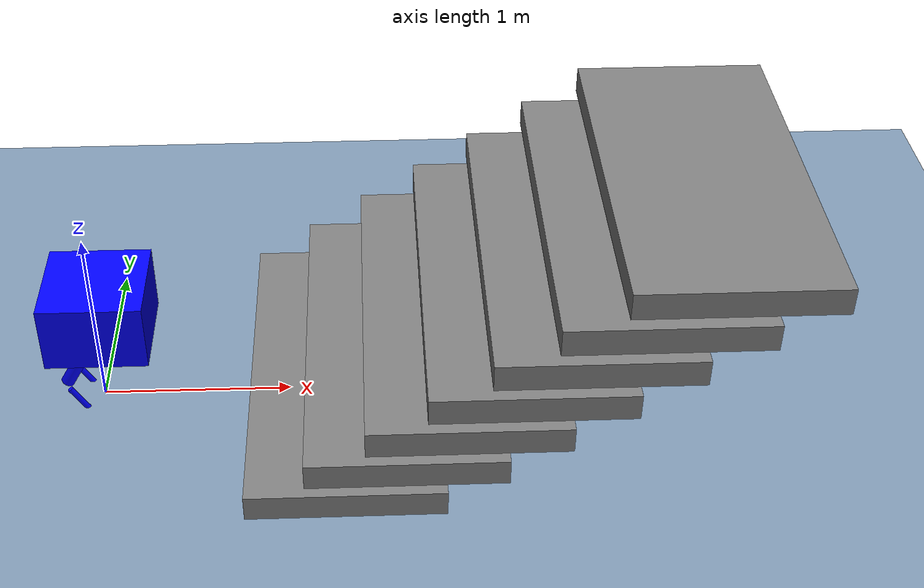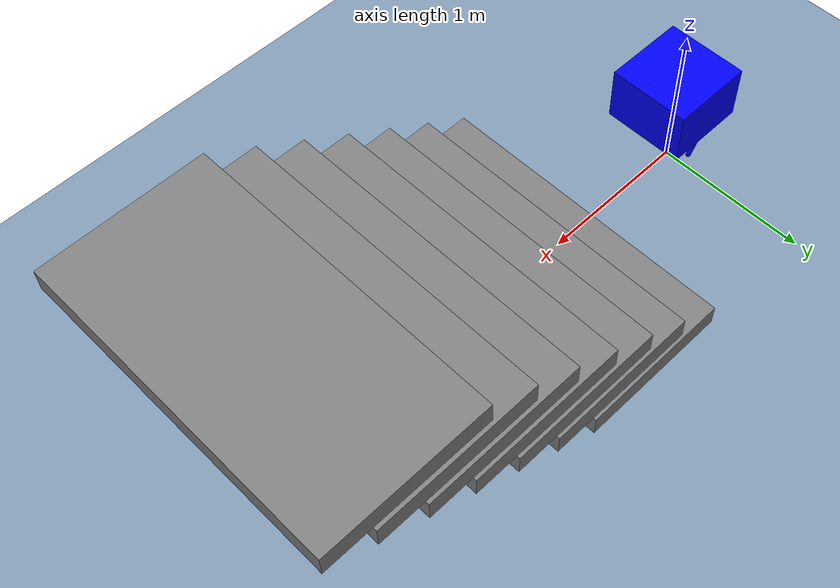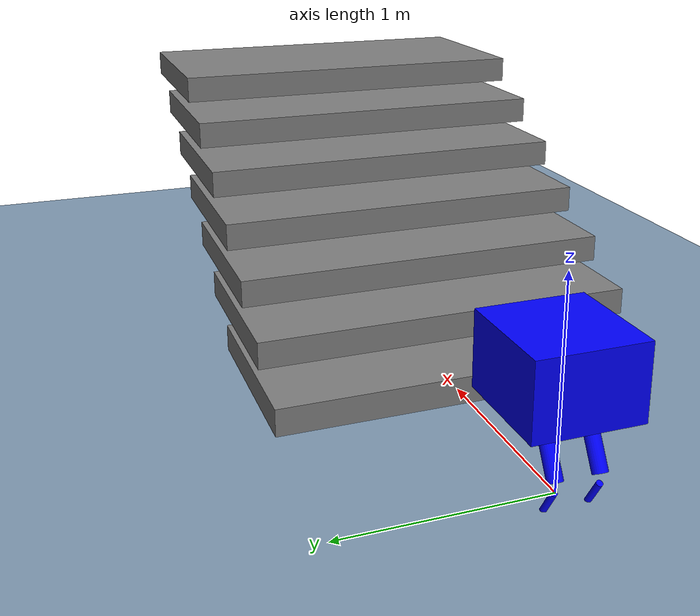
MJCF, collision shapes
<mujoco model="point_foot">
    <compiler angle="radian" meshdir="../meshes/" />
    <size njmax="500" nconmax="100" />

    <default>
        <light castshadow="false" diffuse="1 1 1" />
        <camera fovy="60"/>
        <default class="visual">
            <geom contype="0" conaffinity="0" group="1" type="mesh" rgba="0.9 0.9 0.9 1.0"/>
        </default>
        <joint armature="0.01" damping="0.01"/>
        <geom contype="1" conaffinity="1" condim="3" friction="0.6 0.005 0.0001" rgba="0.5 0.6 0.7 0.0" margin="0.001" group="0" />
    </default>
    <visual>
        <rgba com="0.502 1.0 0 0.5" contactpoint="1.0 1.0 0.6 0.4" contactforce="0.2 0.98 0.2 0.8"/>
        <scale com="0.2" forcewidth="0.05" contactwidth="0.10" contactheight="0.04"/>
    </visual>

    <asset>
        <mesh name="base_Link" file="base_Link.STL" />
        <mesh name="abad_L_Link" file="abad_L_Link.STL" />
        <mesh name="hip_L_Link" file="hip_L_Link.STL" />
        <mesh name="knee_L_Link" file="knee_L_Link.STL" />
        <mesh name="foot_L_Link" file="foot_L_Link.STL" />
        <mesh name="abad_R_Link" file="abad_R_Link.STL" />
        <mesh name="hip_R_Link" file="hip_R_Link.STL" />
        <mesh name="knee_R_Link" file="knee_R_Link.STL" />
        <mesh name="foot_R_Link" file="foot_R_Link.STL" />
    </asset>

    <asset>
        <texture type='skybox' builtin='gradient' width='512' height='512' rgb1="1.0 1.0 1.0" rgb2="1.0 1.0 1.0"/>
        <texture name="texplane" type="2d" builtin="checker" rgb1="0.35 0.35 0.35" rgb2="0.55 0.55 0.55" width="512" height="512" mark="cross" markrgb=".8 .8 .8"/>
        <material name="matplane" reflectance="0.0" texture="texplane" texrepeat="1 1" texuniform="true"/>
    </asset>
        <option timestep="0.001"/>

    <worldbody>
        <geom name="floor" rgba="0.5 0.6 0.7 1" pos="0 0 0" size="0 0 0.25" type="plane"
            material="matplane" condim="3" />

        <body name="staircase" pos="1 0 0.1">
            <geom type="box" size="0.5 1 0.07" pos="0.3 0 0.0" rgba="0.5 0.5 0.5 1" />
            <geom type="box" size="0.5 1 0.07" pos="0.6 0 0.2" rgba="0.5 0.5 0.5 1" />
            <geom type="box" size="0.5 1 0.07" pos="0.9 0 0.4" rgba="0.5 0.5 0.5 1" />
            <geom type="box" size="0.5 1 0.07" pos="1.2 0 0.6" rgba="0.5 0.5 0.5 1" />
            <geom type="box" size="0.5 1 0.07" pos="1.5 0 0.8" rgba="0.5 0.5 0.5 1" />
            <geom type="box" size="0.5 1 0.07" pos="1.8 0 1.0" rgba="0.5 0.5 0.5 1" />
            <geom type="box" size="0.5 1 0.07" pos="2.1 0 1.2" rgba="0.5 0.5 0.5 1" />
        </body>

        <camera name="track" mode="trackcom" pos="0 -2.3 1.6" xyaxes="1 0 0 0 0.707 0.707"/>
        <light directional="true" diffuse=".8 .8 .8" pos="0 0 10" dir="0 0 -10"/>

        <body name="base_Link" pos="0 0 0.65">
            <inertial pos="0.0457123 0.000139854 -0.163809" quat="0.972578 -0.00615364 -0.232461 0.00398682" mass="9.595" diaginertia="0.154712 0.11093 0.0846371" />
            <joint type="free" limited="false" damping="0.0000" stiffness="0.0000" armature="0"/>
            <site name="imu" pos="0 0 0"/>
            <geom class="visual" rgba="0.79216 0.81961 0.93333 1" mesh="base_Link" />
            <geom name="base_collision" type="box" pos="0.033 0 -0.07" size="0.265 0.26 0.18" rgba="0 0 1 0"/>

            <body name="abad_L_Link" pos="0.05556 0.105 -0.2602">
                <inertial pos="-0.06977 0.04479 0.00057" quat="0.595024 0.579772 0.394141 0.393019" mass="1.469" diaginertia="0.00252289 0.00208104 0.00139163" />
                <joint name="abad_L_Joint" pos="0 0 0" axis="1 0 0" limited="true" range="-0.38397 1.39626" />
                <geom class="visual" rgba="0.79216 0.81961 0.93333 1" mesh="abad_L_Link" />
                <geom name="abad_L_collision" type="cylinder" pos="-0.08 0 0" euler="1.57 0 0" size="0.05 0.025" rgba="0 0 1 0" />

                <body name="hip_L_Link" pos="-0.077 0.0205 0">
                    <inertial pos="-0.02869 -0.0477 -0.03992" quat="0.853885 0.192797 0.226903 0.426877" mass="2.3" diaginertia="0.0233264 0.0230229 0.00277548" />
                    <joint name="hip_L_Joint" pos="0 0 0" axis="0 1 0" limited="true" range="-1.01229 1.39626" />
                    <geom class="visual" rgba="1 1 1 1" mesh="hip_L_Link" />
                    <geom name="hip_L_collision" type="cylinder" pos="-0.1 -0.02 -0.14" euler="0 0.53 0" size="0.035 0.09" rgba="0 0 1 0" />

                    <body name="knee_L_Link" pos="-0.15 -0.0205 -0.25981">
                        <inertial pos="0.05168 0.00152 -0.08148" quat="0.668191 -0.202995 -0.19946 0.687408" mass="0.55" diaginertia="0.00419956 0.00414131 0.000138393" />
                        <joint name="knee_L_Joint" pos="0 0 0" axis="0 -1 0" limited="true" range="-0.872665 1.36136" />
                        <geom class="visual" rgba="0.79216 0.81961 0.93333 1" mesh="knee_L_Link" />
                        <geom name="knee_L_collision" type="cylinder" pos="0.078 0 -0.12" euler="0 -0.55 0" size="0.015 0.13" rgba ="0 0 1 0"/>

                        <geom class="visual" pos="0.150 0 -0.2598" rgba="0.26667 0.26667 0.26667 1" mesh="foot_L_Link" />
                        <geom name="foot_L_collision" type="sphere" pos="0.150 0 -0.2598" size="0.032" rgba="0 0 1 0" />
                    </body>
                </body>
            </body>

            <body name="abad_R_Link" pos="0.05556 -0.105 -0.2602">
                <inertial pos="-0.06977 -0.04479 0.00057" quat="0.393019 0.394141 0.579772 0.595024" mass="1.469" diaginertia="0.00252289 0.00208104 0.00139163" />
                <joint name="abad_R_Joint" pos="0 0 0" axis="1 0 0" limited="true" range="-1.39626 0.38397" />
                <geom class="visual" rgba="0.79216 0.81961 0.93333 1" mesh="abad_R_Link" />
                <geom name="abad_R_collision" type="cylinder" pos="-0.08 0 0" euler="1.57 0 0" size="0.05 0.025" rgba="0 0 1 0" />

                <body name="hip_R_Link" pos="-0.077 -0.0205 0">
                    <inertial pos="-0.02869 0.0477 -0.03992" quat="0.426877 0.226903 0.192797 0.853885" mass="2.3" diaginertia="0.0233264 0.0230229 0.00277548" />
                    <joint name="hip_R_Joint" pos="0 0 0" axis="0 -1 0" limited="true" range="-1.39626 1.01229" />
                    <geom class="visual" rgba="1 1 1 1" mesh="hip_R_Link" />
                    <geom name="hip_R_collision" type="cylinder" pos="-0.10 0.025 -0.14" euler="0 0.53 0" size="0.035 0.09" rgba="0 0 1 0" />

                    <body name="knee_R_Link" pos="-0.15 0.0205 -0.25981">
                        <inertial pos="0.05168 -0.00152 -0.08148" quat="0.687408 -0.19946 -0.202995 0.668191" mass="0.55" diaginertia="0.00419956 0.00414131 0.000138393" />
                        <joint name="knee_R_Joint" pos="0 0 0" axis="0 1 0" limited="true" range="-1.36136 0.872665" />
                        <geom class="visual" rgba="0.79216 0.81961 0.93333 1" mesh="knee_R_Link" />
                        <geom name="knee_R_collision" type="cylinder" pos="0.078 0 -0.12" euler="0 -0.55 0" size="0.015 0.13" rgba ="0 0 1 0"/>

                        <geom class="visual" pos="0.150 0 -0.2598" rgba="0.26667 0.26667 0.26667 1" mesh="foot_L_Link" />
                        <geom name="foot_R_collision" type="sphere" pos="0.150 0 -0.2598" size="0.032" rgba="0 0 1 0" />
                    </body>
                </body>
            </body>
        </body>
    </worldbody>

    <actuator>
        <motor name="abad_L_Joint"  gear="1"  joint="abad_L_Joint" ctrllimited='true' ctrlrange='-80 80'/>
        <motor name="hip_L_Joint"   gear="1"  joint="hip_L_Joint"  ctrllimited='true' ctrlrange='-80 80'/>
        <motor name="knee_L_Joint"  gear="1"  joint="knee_L_Joint" ctrllimited='true' ctrlrange='-80 80'/>
        <motor name="abad_R_Joint"  gear="1"  joint="abad_R_Joint" ctrllimited='true' ctrlrange='-80 80' />
        <motor name="hip_R_Joint"   gear="1"  joint="hip_R_Joint"  ctrllimited='true' ctrlrange='-80 80' />
        <motor name="knee_R_Joint"  gear="1"  joint="knee_R_Joint" ctrllimited='true' ctrlrange='-80 80'/>
    </actuator>

    <sensor>
        <framequat name="quat" objtype="site" objname="imu"/>
        <gyro name="gyro" site="imu"/>
        <accelerometer name="acc" site="imu"/>
        <jointpos name="abad_L_Joint"    joint="abad_L_Joint" />
        <jointpos name="hip_L_Joint"     joint="hip_L_Joint" />
        <jointpos name="knee_L_Joint"    joint="knee_L_Joint" />
        <jointpos name="abad_R_Joint"    joint="abad_R_Joint" />
        <jointpos name="hip_R_Joint"     joint="hip_R_Joint" />
        <jointpos name="knee_R_Joint"    joint="knee_R_Joint" />
    </sensor>

</mujoco>
